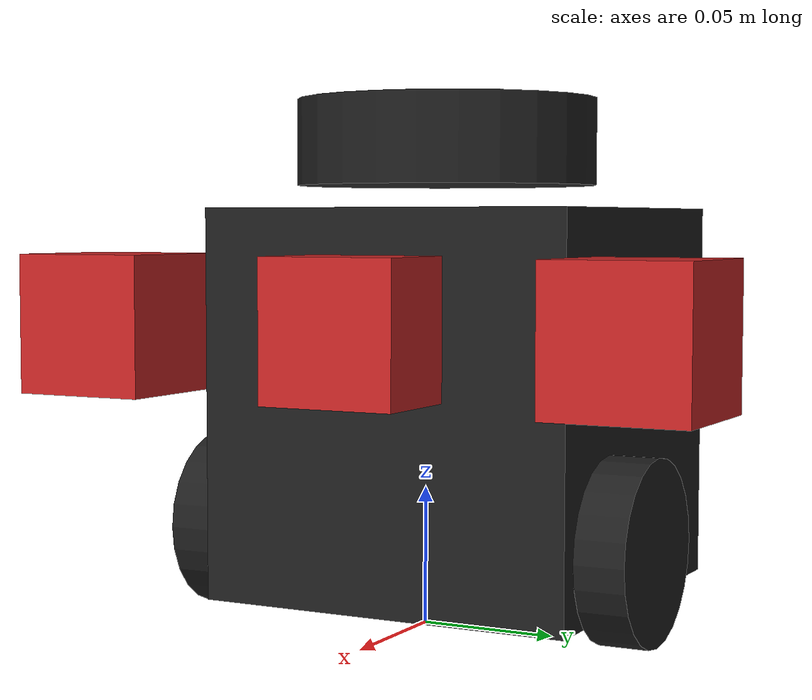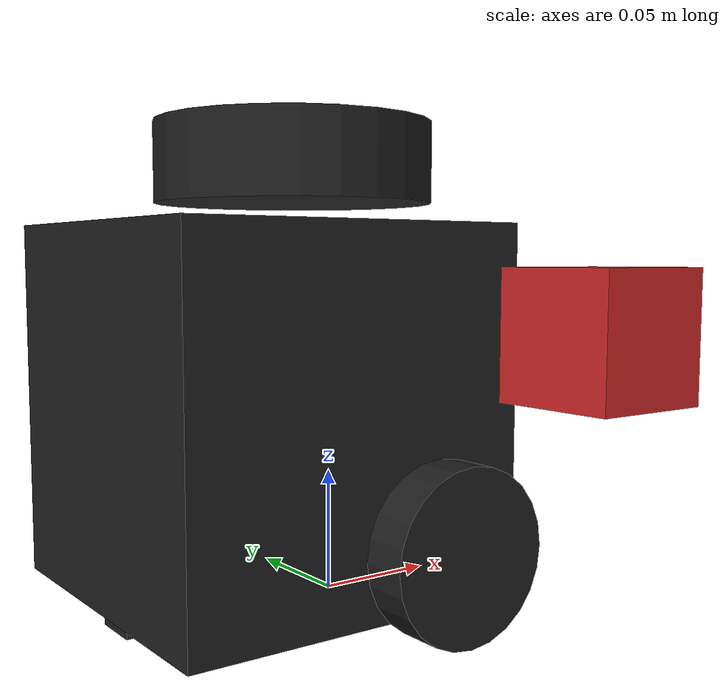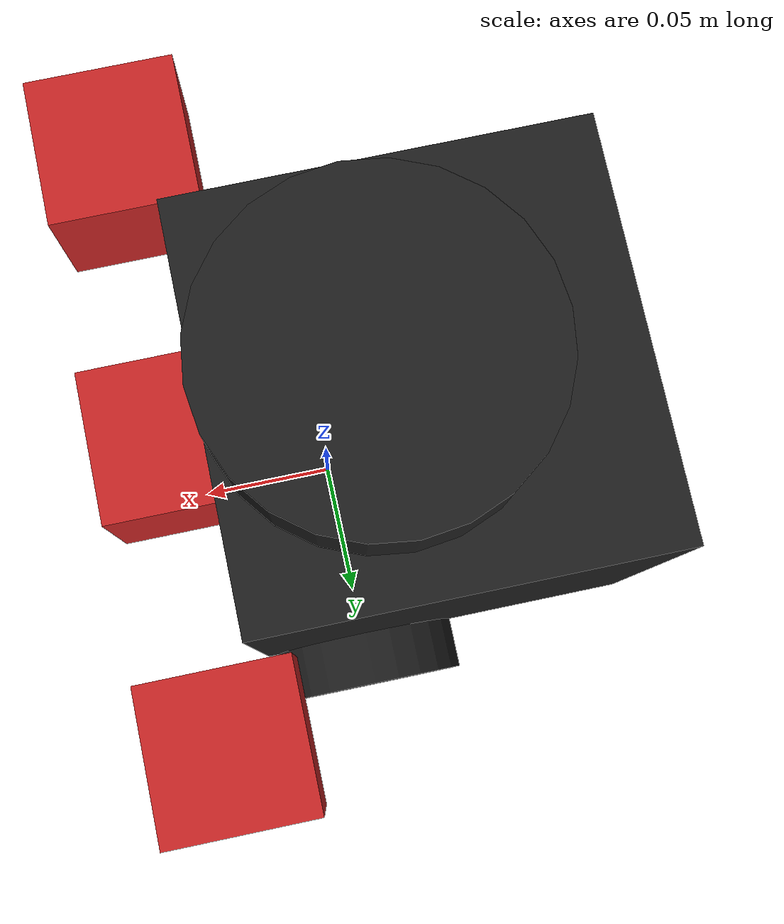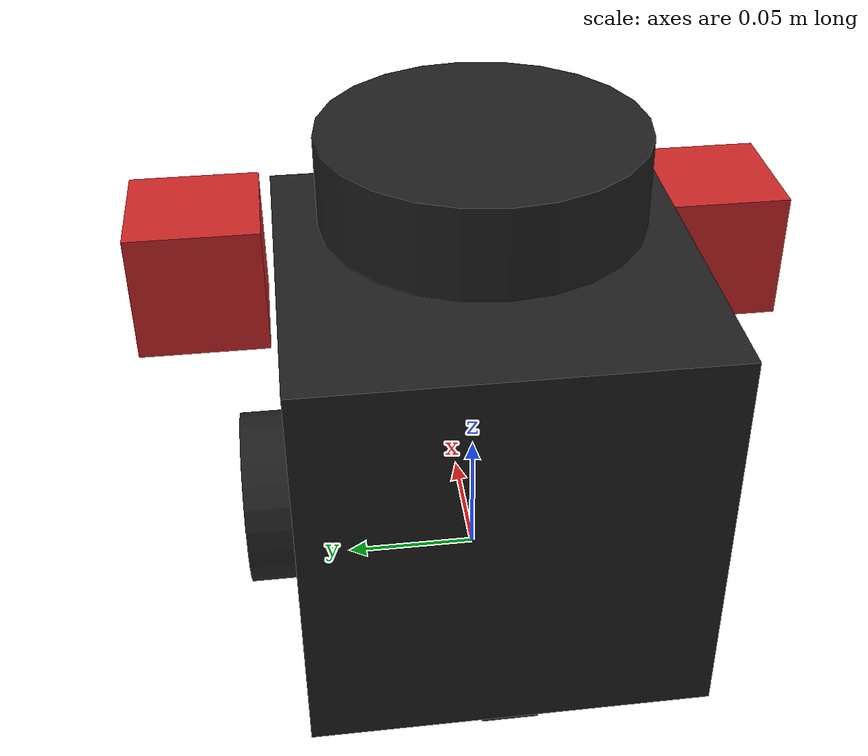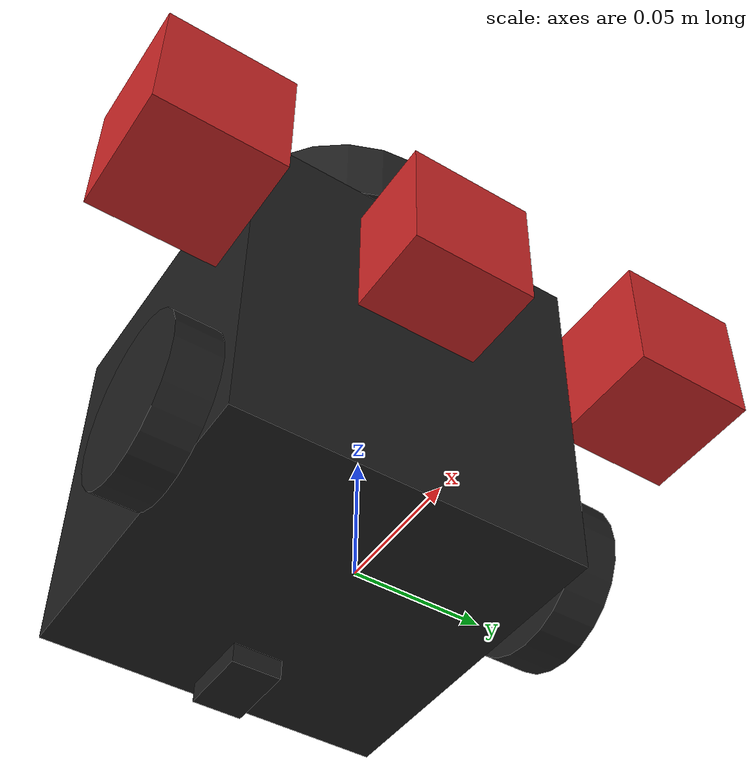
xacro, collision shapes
<?xml version="1.0" ?>
<robot name="turtlebot3_burger" xmlns:xacro="http://ros.org/wiki/xacro">
  <xacro:include filename="$(find turtlebot3_description)/urdf/common_properties.xacro"/>
  <xacro:include filename="$(find turtlebot3_description)/urdf/turtlebot3_burger_vision.gazebo.xacro"/>
  <xacro:property name="camera_link" value="0.05" /> <!-- Size of square 'camera' box -->

  <link name="base_footprint"/>

  <joint name="base_joint" type="fixed">
    <parent link="base_footprint"/>
    <child link="base_link"/>
    <origin xyz="0.0 0.0 0.010" rpy="0 0 0"/>
  </joint>

  <link name="base_link">
    <visual>
      <origin xyz="-0.032 0 0.0" rpy="0 0 0"/>
      <geometry>
        <mesh filename="package://turtlebot3_description/meshes/bases/burger_base.stl" scale="0.001 0.001 0.001"/>
      </geometry>
      <material name="light_black"/>
    </visual>

    <collision>
      <origin xyz="-0.032 0 0.070" rpy="0 0 0"/>
      <geometry>
        <box size="0.140 0.140 0.143"/>
      </geometry>
    </collision>

    <inertial>
      <origin xyz="0 0 0" rpy="0 0 0"/>
      <mass value="8.2573504e-01"/>
      <inertia ixx="2.2124416e-03" ixy="-1.2294101e-05" ixz="3.4938785e-05"
               iyy="2.1193702e-03" iyz="-5.0120904e-06"
               izz="2.0064271e-03" />
    </inertial>
  </link>

  <joint name="wheel_left_joint" type="continuous">
    <parent link="base_link"/>
    <child link="wheel_left_link"/>
    <origin xyz="0.0 0.08 0.023" rpy="-1.57 0 0"/>
    <axis xyz="0 0 1"/>
  </joint>

  <link name="wheel_left_link">
    <visual>
      <origin xyz="0 0 0" rpy="1.57 0 0"/>
      <geometry>
        <mesh filename="package://turtlebot3_description/meshes/wheels/left_tire.stl" scale="0.001 0.001 0.001"/>
      </geometry>
      <material name="dark"/>
    </visual>

    <collision>
      <origin xyz="0 0 0" rpy="0 0 0"/>
      <geometry>
        <cylinder length="0.018" radius="0.033"/>
      </geometry>
    </collision>

    <inertial>
      <origin xyz="0 0 0" />
      <mass value="2.8498940e-02" />
      <inertia ixx="1.1175580e-05" ixy="-4.2369783e-11" ixz="-5.9381719e-09"
               iyy="1.1192413e-05" iyz="-1.4400107e-11"
               izz="2.0712558e-05" />
      </inertial>
  </link>

  <joint name="wheel_right_joint" type="continuous">
    <parent link="base_link"/>
    <child link="wheel_right_link"/>
    <origin xyz="0.0 -0.080 0.023" rpy="-1.57 0 0"/>
    <axis xyz="0 0 1"/>
  </joint>

  <link name="wheel_right_link">
    <visual>
      <origin xyz="0 0 0" rpy="1.57 0 0"/>
      <geometry>
        <mesh filename="package://turtlebot3_description/meshes/wheels/right_tire.stl" scale="0.001 0.001 0.001"/>
      </geometry>
      <material name="dark"/>
    </visual>

    <collision>
      <origin xyz="0 0 0" rpy="0 0 0"/>
      <geometry>
        <cylinder length="0.018" radius="0.033"/>
      </geometry>
    </collision>

    <inertial>
      <origin xyz="0 0 0" />
      <mass value="2.8498940e-02" />
      <inertia ixx="1.1175580e-05" ixy="-4.2369783e-11" ixz="-5.9381719e-09"
               iyy="1.1192413e-05" iyz="-1.4400107e-11"
               izz="2.0712558e-05" />
      </inertial>
  </link>

  <joint name="caster_back_joint" type="fixed">
    <parent link="base_link"/>
    <child link="caster_back_link"/>
    <origin xyz="-0.081 0 -0.004" rpy="-1.57 0 0"/>
  </joint>

  <link name="caster_back_link">
    <collision>
      <origin xyz="0 0.001 0" rpy="0 0 0"/>
      <geometry>
        <box size="0.030 0.009 0.020"/>
      </geometry>
    </collision>

    <inertial>
      <origin xyz="0 0 0" />
      <mass value="0.005" />
      <inertia ixx="0.001" ixy="0.0" ixz="0.0"
               iyy="0.001" iyz="0.0"
               izz="0.001" />
    </inertial>
  </link>

  <!-- Camera left -->
  <link name="camera_link">
    <collision>
      <origin xyz="0 0 0" rpy="0 0 0"/>
      <geometry>
        <box size="${camera_link} ${camera_link} ${camera_link}"/>
      </geometry>
    </collision>

    <visual>
      <origin xyz="0 0 0" rpy="0 0 0"/>
      <geometry>
        <box size="${camera_link} ${camera_link} ${camera_link}"/>
      </geometry>
      <material name="red"/>
    </visual>

    <inertial>
      <mass value="1e-5" />
      <origin xyz="0 0 0" rpy="0 0 0"/>
      <inertia ixx="1e-6" ixy="0" ixz="0" iyy="1e-6" iyz="0" izz="1e-6" />
    </inertial>
  </link>

  <joint name="camera_joint" type="fixed">
    <axis xyz="0 1 0" />
    <origin xyz="0.05 0 0.1" rpy="0 0 0"/>
    <parent link="base_link"/>
    <child link="camera_link"/>
  </joint>

 <link name="camera_optical_link">
   <origin xyz="0 0 0" rpy="0 0 0"/>
 </link>

  <joint name="camera_optical_joint" type="fixed">
    <axis xyz="0 1 0" />
    <origin xyz="0 0 0" rpy="-1.57 0 -1.57"/>
    <parent link="camera_link"/>
    <child link="camera_optical_link"/>
  </joint>

  <!-- Camera left -->
  <link name="camera_link_left">
    <collision>
      <origin xyz="0 0 0" rpy="0 0 0"/>
      <geometry>
        <box size="${camera_link} ${camera_link} ${camera_link}"/>
      </geometry>
    </collision>

    <visual>
      <origin xyz="0 0 0" rpy="0 0 0"/>
      <geometry>
        <box size="${camera_link} ${camera_link} ${camera_link}"/>
      </geometry>
      <material name="red"/>
    </visual>

    <inertial>
      <mass value="1e-5" />
      <origin xyz="0 0 0" rpy="0 0 0"/>
      <inertia ixx="1e-6" ixy="0" ixz="0" iyy="1e-6" iyz="0" izz="1e-6" />
    </inertial>
  </link>

  <joint name="camera_joint_left" type="fixed">
    <axis xyz="0 1 0" />
    <origin xyz="0.05 0.1 0.1" rpy="0 0 0"/>
    <parent link="base_link"/>
    <child link="camera_link_left"/>
  </joint>

  <!-- Camera right -->
  <link name="camera_link_right">
    <collision>
      <origin xyz="0 0 0" rpy="0 0 0"/>
      <geometry>
        <box size="${camera_link} ${camera_link} ${camera_link}"/>
      </geometry>
    </collision>

    <visual>
      <origin xyz="0 0 0" rpy="0 0 0"/>
      <geometry>
        <box size="${camera_link} ${camera_link} ${camera_link}"/>
      </geometry>
      <material name="red"/>
    </visual>

    <inertial>
      <mass value="1e-5" />
      <origin xyz="0 0 0" rpy="0 0 0"/>
      <inertia ixx="1e-6" ixy="0" ixz="0" iyy="1e-6" iyz="0" izz="1e-6" />
    </inertial>
  </link>

  <joint name="camera_joint_right" type="fixed">
    <axis xyz="0 1 0" />
    <origin xyz="0.05 -0.1 0.1" rpy="0 0 0"/>
    <parent link="base_link"/>
    <child link="camera_link_right"/>
  </joint>

  <joint name="imu_joint" type="fixed">
    <parent link="base_link"/>
    <child link="imu_link"/>
    <origin xyz="-0.032 0 0.068" rpy="0 0 0"/>
  </joint>

  <link name="imu_link"/>

  <joint name="scan_joint" type="fixed">
    <parent link="base_link"/>
    <child link="base_scan"/>
    <origin xyz="-0.032 0 0.172" rpy="0 0 0"/>
  </joint>

  <link name="base_scan">
    <visual>
      <origin xyz="0 0 0.0" rpy="0 0 0"/>
      <geometry>
        <mesh filename="package://turtlebot3_description/meshes/sensors/lds.stl" scale="0.001 0.001 0.001"/>
      </geometry>
      <material name="dark"/>
    </visual>

    <collision>
      <origin xyz="0.015 0 -0.0065" rpy="0 0 0"/>
      <geometry>
        <cylinder length="0.0315" radius="0.055"/>
      </geometry>
    </collision>

    <inertial>
      <mass value="0.114" />
      <origin xyz="0 0 0" />
      <inertia ixx="0.001" ixy="0.0" ixz="0.0"
               iyy="0.001" iyz="0.0"
               izz="0.001" />
    </inertial>
  </link>

</robot>
